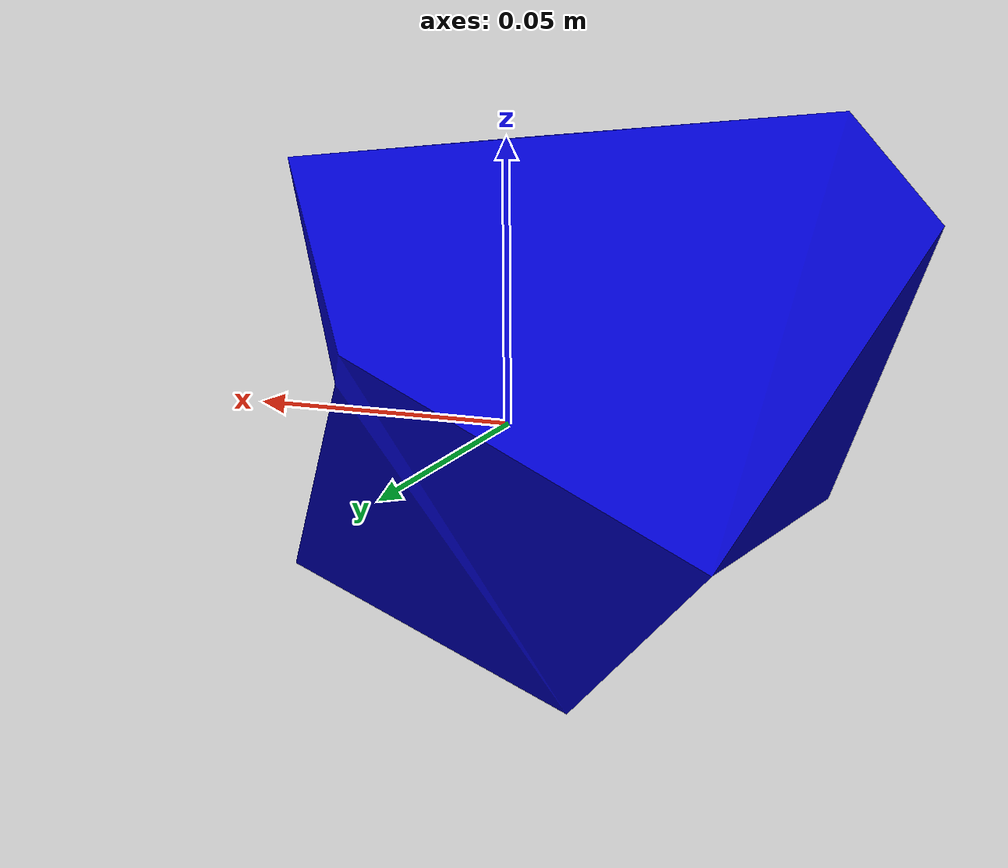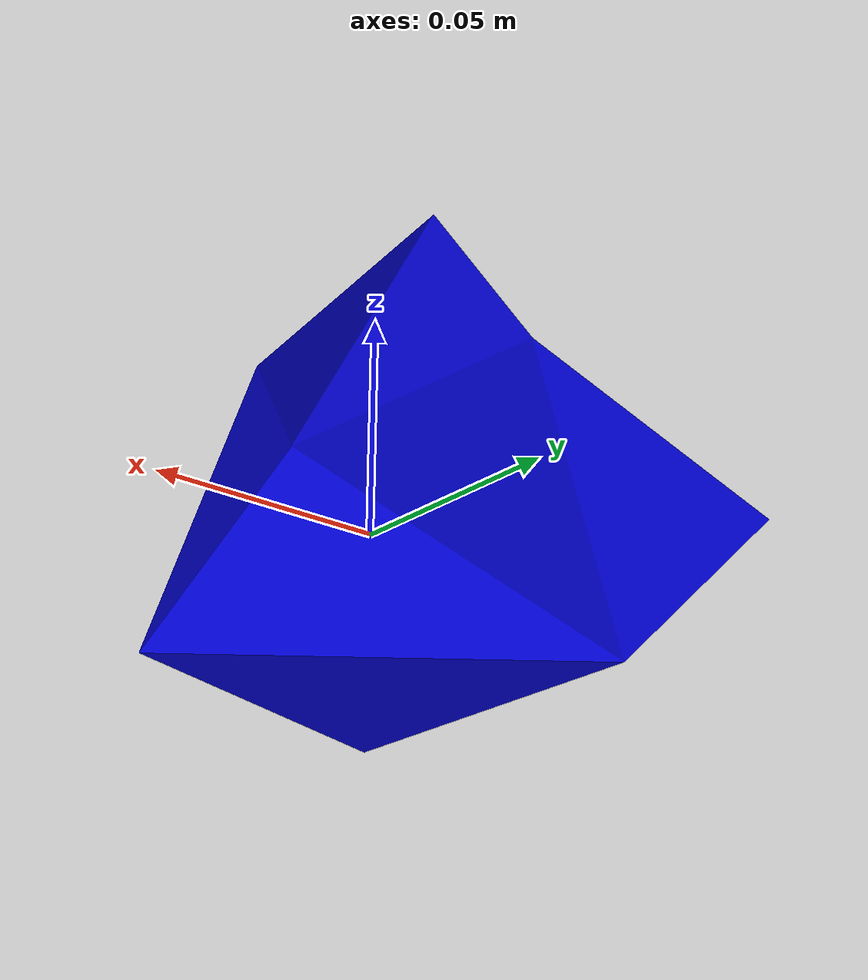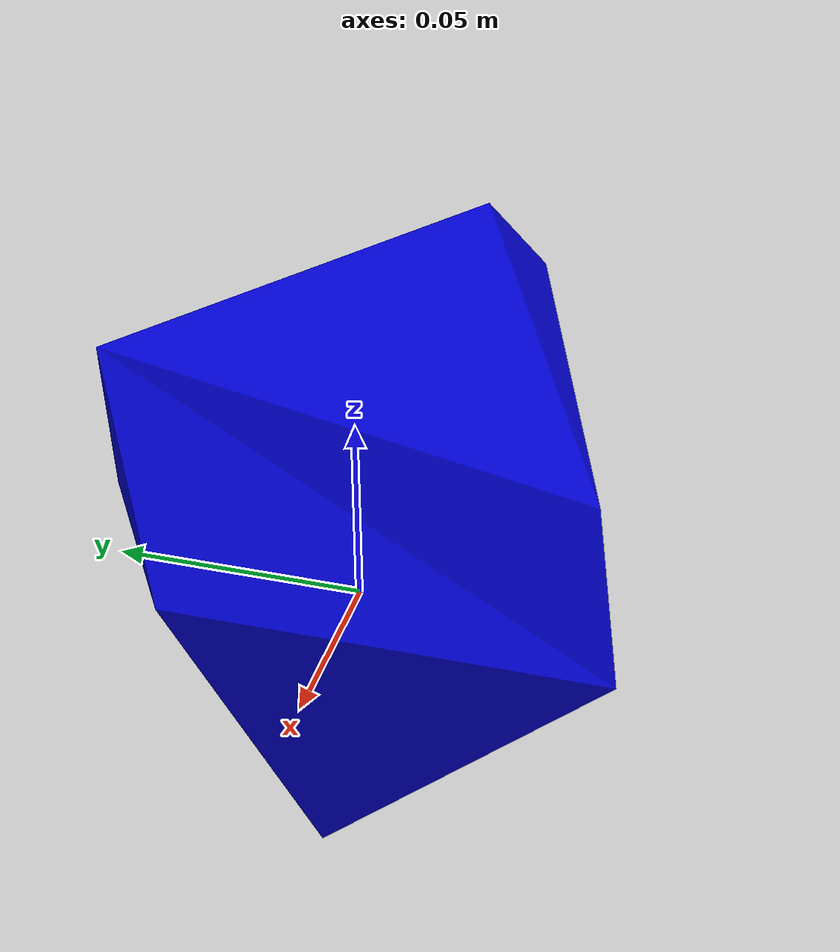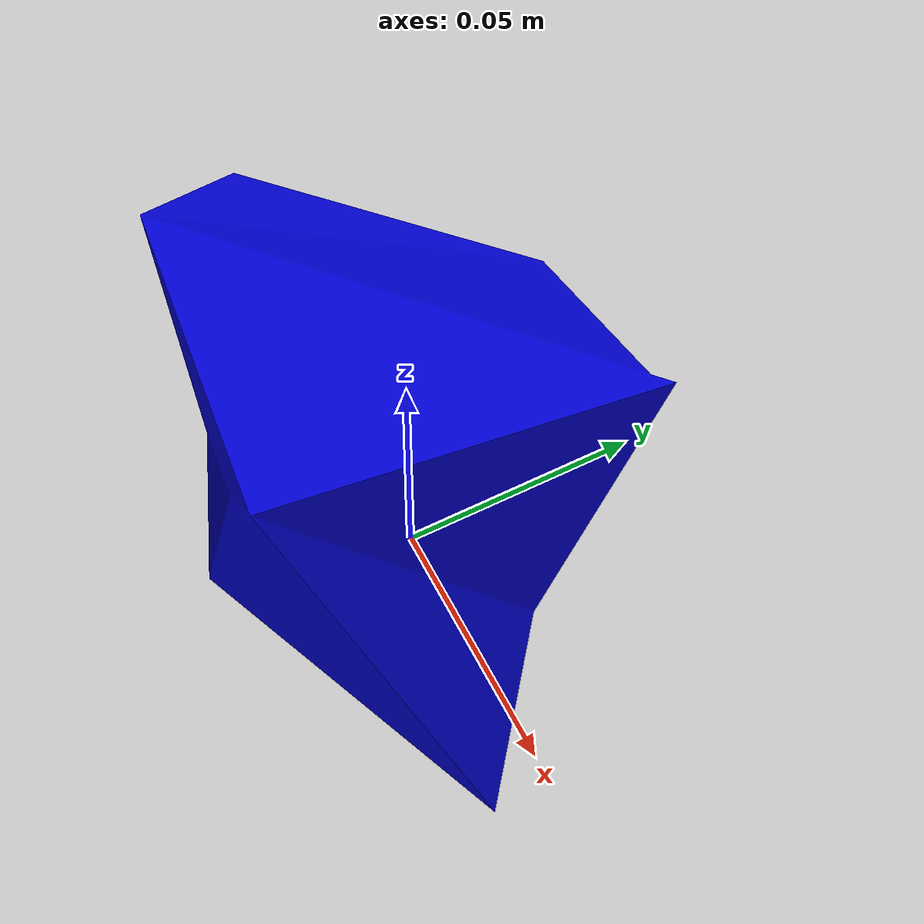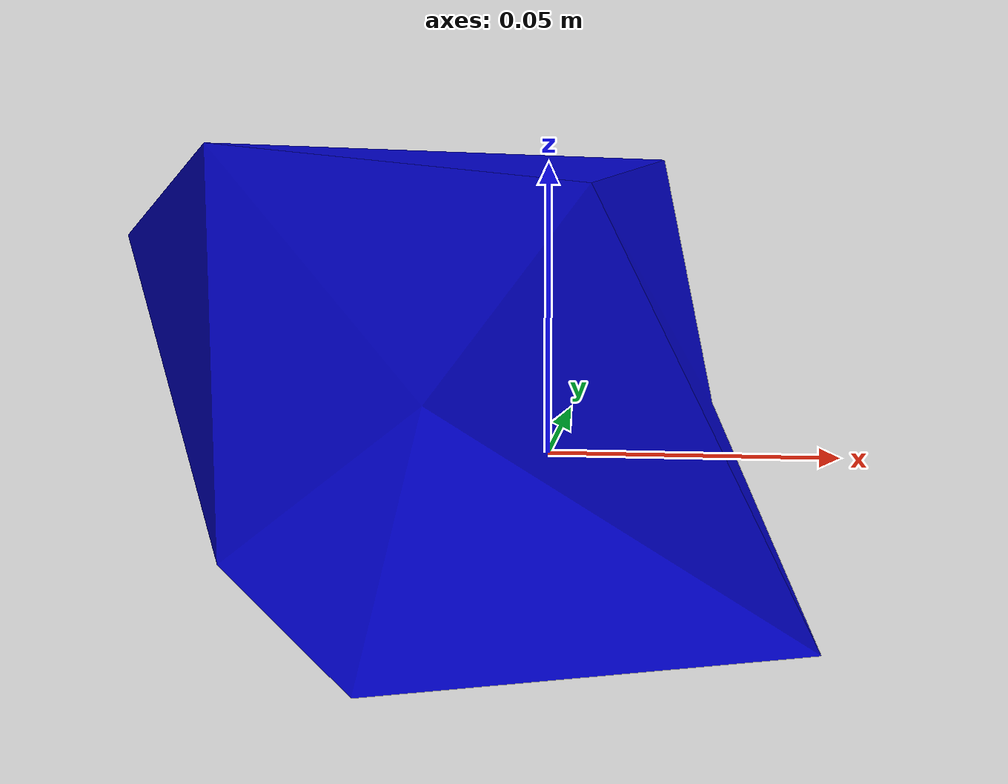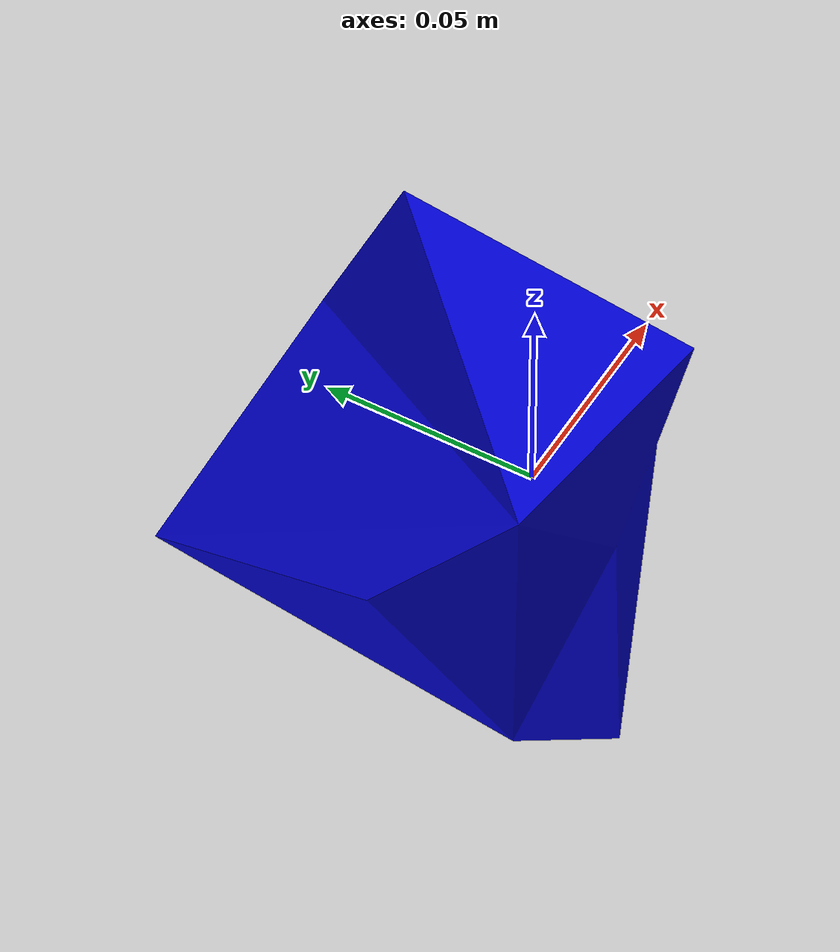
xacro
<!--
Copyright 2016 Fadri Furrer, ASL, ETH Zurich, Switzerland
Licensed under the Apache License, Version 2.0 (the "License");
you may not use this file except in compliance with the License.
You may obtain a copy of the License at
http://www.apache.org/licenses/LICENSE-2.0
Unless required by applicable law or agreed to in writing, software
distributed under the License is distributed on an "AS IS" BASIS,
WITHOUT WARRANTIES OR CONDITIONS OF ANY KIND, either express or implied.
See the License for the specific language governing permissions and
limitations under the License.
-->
<?xml version="1.0"?>

<robot name="2_poly" xmlns:xacro="http://ros.org/wiki/xacro">
  <xacro:property name="mesh_file" value="package://urdf_models/models/polygons/2_poly_config_2.dae" />
  <xacro:property name="mass" value="1" />
  <link name="base_link"></link>

  <joint name="base_joint" type="fixed">
    <origin xyz="0 0 0" rpy="0 0 0" />
    <parent link="base_link" />
    <child link="base_link_inertia" />
  </joint>
  <link name="base_link_inertia">
      <inertial>
        <mass value="${mass}" />  <!-- [kg] -->
        <origin xyz=" -0.160056e-1  0.049179e-1 0.080512e-1" />
        <inertia ixx="0.034550e-02" ixy="0.000148e-02" 		ixz="0.001628e-02"
                			      	iyy="0.038334e-02"  	iyz="0.001259e-02"
                 								    		izz="0.036534e-02" />
        </inertial>

      <visual>
        <origin xyz="0 0 0" rpy="0 0 0" />
        <geometry>
          <mesh filename="${mesh_file}" scale="1 1 1" />
        </geometry>
	<material name="blue">
	  <color rgba="0 0 .8 1"/>
	</material>
      </visual>

      <collision>
        <origin xyz="0 0 0" rpy="0 0 0" />
        <geometry>
          <mesh filename="${mesh_file}" scale="1 1 1" />
        </geometry>
      </collision>
  </link>

  <gazebo reference="base_link">
      <mu1 value="1.2"/>
      <mu2 value="1.1"/>
      <kp  value="5000000.0" />
      <kd  value="1.0" />
      <fdir1 value="1 0 0"/>
      <collision>
	        <surface>
	          <bounce>
	            <restitution_coefficient> 0.1 </restitution_coefficient>
	            <threshold>0.</threshold>
	          </bounce>
		      <contact>
		          <ode>
		            <max_vel>0.1</max_vel>
		            <min_depth>0.001</min_depth>
		          </ode>
		      </contact>
	        </surface>
	   </collision>
      <material name="Gray">
	    <color rgba="0.8 0.8 0.8 1"/>
	  </material>
      <turnGravityOff>false</turnGravityOff>
  </gazebo>

</robot>
